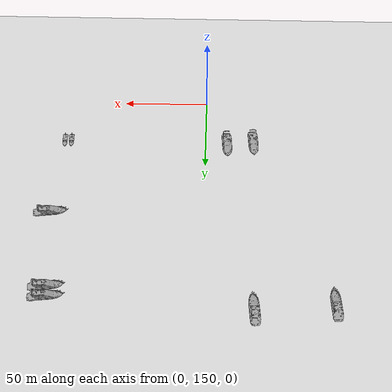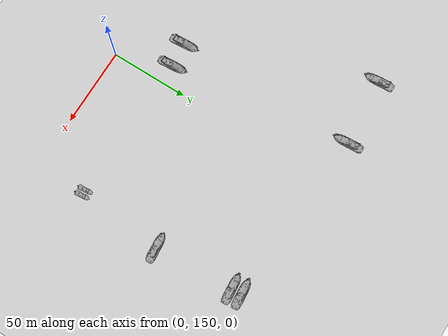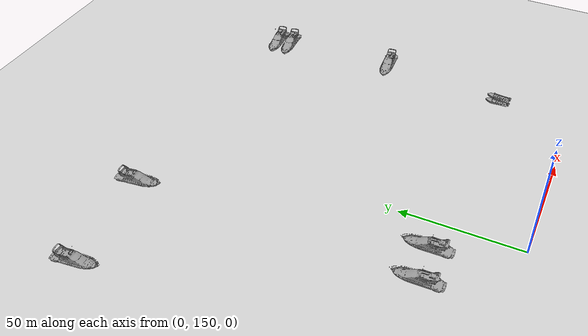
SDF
<sdf version="1.7">
 <world name="default">
  <model name="ground_plane">
   <static>1</static>
   <link name="link">
    <collision name="collision">
     <geometry><plane><normal>0 0 1</normal><size>100 100</size></plane></geometry>
     <surface><friction><ode><mu>100</mu><mu2>50</mu2></ode></friction></surface>
    </collision>
    <visual name="visual">
     <cast_shadows>0</cast_shadows>
     <geometry><plane><normal>0 0 1</normal><size>100 100</size></plane></geometry>
     <material>
      <script><uri>file://media/materials/scripts/gazebo.material</uri><name>Gazebo/Grey</name></script>
     </material>
    </visual>
   </link>
  </model>
  <model name="sailboat_1_clone_1_clone_0">
   <static>1</static>
   <link name="link">
    <visual name="visual">
     <pose>0 0 1 0 0 -1.507</pose>
     <geometry>
      <mesh>
       <uri>/home/albert/marinero_ws/src/marinero_simulations/models/sailboat_1/meshes/Sailboat.stl</uri>
       <scale>1.8 1.8 1.8</scale>
      </mesh>
     </geometry>
     <material>
      <script><uri>file://media/materials/scripts/gazebo.material</uri><name>Gazebo/Grey</name></script>
     </material>
    </visual>
    <collision name="collision">
     <pose>0 0 1 0 0 -1.507</pose>
     <geometry>
      <mesh>
       <uri>/home/albert/marinero_ws/src/marinero_simulations/models/sailboat_1/meshes/Sailboat.stl</uri>
       <scale>1.8 1.8 1.8</scale>
      </mesh>
     </geometry>
    </collision>
   </link>
   <pose>42.3985 307.643 0 0 0 -3.13388</pose>
  </model>
  <model name="sailboat_1_clone_1_clone_1">
   <static>1</static>
   <link name="link">
    <visual name="visual">
     <pose>0 0 1 0 0 -1.507</pose>
     <geometry>
      <mesh>
       <uri>/home/albert/marinero_ws/src/marinero_simulations/models/sailboat_1/meshes/Sailboat.stl</uri>
       <scale>1.8 1.8 1.8</scale>
      </mesh>
     </geometry>
     <material>
      <script><uri>file://media/materials/scripts/gazebo.material</uri><name>Gazebo/Grey</name></script>
     </material>
    </visual>
    <collision name="collision">
     <pose>0 0 1 0 0 -1.507</pose>
     <geometry>
      <mesh>
       <uri>/home/albert/marinero_ws/src/marinero_simulations/models/sailboat_1/meshes/Sailboat.stl</uri>
       <scale>1.8 1.8 1.8</scale>
      </mesh>
     </geometry>
    </collision>
   </link>
   <pose>-9.86745 303.465 0 0 0 -3.13388</pose>
  </model>
  <model name="sailboat_1_clone_1_clone_clone_0_clone">
   <static>1</static>
   <link name="link">
    <visual name="visual">
     <pose>0 0 1 0 0 -1.507</pose>
     <geometry>
      <mesh>
       <uri>/home/albert/marinero_ws/src/marinero_simulations/models/sailboat_1/meshes/Sailboat.stl</uri>
       <scale>1.8 1.8 1.8</scale>
      </mesh>
     </geometry>
     <material>
      <script><uri>file://media/materials/scripts/gazebo.material</uri><name>Gazebo/Grey</name></script>
     </material>
    </visual>
    <collision name="collision">
     <pose>0 0 1 0 0 -1.507</pose>
     <geometry>
      <mesh>
       <uri>/home/albert/marinero_ws/src/marinero_simulations/models/sailboat_1/meshes/Sailboat.stl</uri>
       <scale>1.8 1.8 1.8</scale>
      </mesh>
     </geometry>
    </collision>
   </link>
   <pose>-91.8625 281.936 0 0 -0 3.06385</pose>
  </model>
  <model name="sailboat_1_clone_1_clone_clone_0_clone_0">
   <static>1</static>
   <link name="link">
    <visual name="visual">
     <pose>0 0 1 0 0 -1.507</pose>
     <geometry>
      <mesh>
       <uri>/home/albert/marinero_ws/src/marinero_simulations/models/sailboat_1/meshes/Sailboat.stl</uri>
       <scale>1.8 1.8 1.8</scale>
      </mesh>
     </geometry>
     <material>
      <script><uri>file://media/materials/scripts/gazebo.material</uri><name>Gazebo/Grey</name></script>
     </material>
    </visual>
    <collision name="collision">
     <pose>0 0 1 0 0 -1.507</pose>
     <geometry>
      <mesh>
       <uri>/home/albert/marinero_ws/src/marinero_simulations/models/sailboat_1/meshes/Sailboat.stl</uri>
       <scale>1.8 1.8 1.8</scale>
      </mesh>
     </geometry>
    </collision>
   </link>
   <pose>87.9063 270.83 0 0 -0 1.58681</pose>
  </model>
  <model name="sailboat_1_1_clone_2">
   <static>1</static>
   <link name="link">
    <visual name="visual">
     <pose>0 0 1 0 0 -1.507</pose>
     <geometry>
      <mesh>
       <uri>/home/albert/marinero_ws/src/marinero_simulations/models/sailboat_1/meshes/Sailboat.stl</uri>
       <scale>1.8 1.8 1.8</scale>
      </mesh>
     </geometry>
     <material>
      <script><uri>file://media/materials/scripts/gazebo.material</uri><name>Gazebo/Grey</name></script>
     </material>
    </visual>
    <collision name="collision">
     <pose>0 0 1 0 0 -1.507</pose>
     <geometry>
      <mesh>
       <uri>/home/albert/marinero_ws/src/marinero_simulations/models/sailboat_1/meshes/Sailboat.stl</uri>
       <scale>1.8 1.8 1.8</scale>
      </mesh>
     </geometry>
    </collision>
   </link>
   <pose>3.62081 325.28 0 0 -0 0.002878</pose>
  </model>
  <model name="yacht_1_2">
   <static>1</static>
   <link name="link">
    <visual name="visual">
     <pose>0 0 0.35 0 -0 0</pose>
     <geometry>
      <mesh>
       <uri>/home/albert/marinero_ws/src/marinero_simulations/models/yacht_1/meshes/Yacht_1.stl</uri>
       <scale>2.2 2.2 2.2</scale>
      </mesh>
     </geometry>
     <material>
      <script><uri>file://media/materials/scripts/gazebo.material</uri><name>Gazebo/Grey</name></script>
     </material>
    </visual>
    <collision name="collision">
     <pose>0 0 0.35 0 -0 0</pose>
     <geometry>
      <mesh>
       <uri>/home/albert/marinero_ws/src/marinero_simulations/models/yacht_1/meshes/Yacht_1.stl</uri>
       <scale>2.2 2.2 2.2</scale>
      </mesh>
     </geometry>
    </collision>
   </link>
   <pose>85.1845 287.848 0 0 0 -1.48602</pose>
  </model>
  <model name="yacht_1_2_clone">
   <static>1</static>
   <link name="link">
    <visual name="visual">
     <pose>0 0 0.35 0 -0 0</pose>
     <geometry>
      <mesh>
       <uri>/home/albert/marinero_ws/src/marinero_simulations/models/yacht_1/meshes/Yacht_1.stl</uri>
       <scale>2.2 2.2 2.2</scale>
      </mesh>
     </geometry>
     <material>
      <script><uri>file://media/materials/scripts/gazebo.material</uri><name>Gazebo/Grey</name></script>
     </material>
    </visual>
    <collision name="collision">
     <pose>0 0 0.35 0 -0 0</pose>
     <geometry>
      <mesh>
       <uri>/home/albert/marinero_ws/src/marinero_simulations/models/yacht_1/meshes/Yacht_1.stl</uri>
       <scale>2.2 2.2 2.2</scale>
      </mesh>
     </geometry>
    </collision>
   </link>
   <pose>84.6988 294.401 0 0 0 -1.48602</pose>
  </model>
  <model name="yacht_1_2_clone_0">
   <static>1</static>
   <link name="link">
    <visual name="visual">
     <pose>0 0 0.35 0 -0 0</pose>
     <geometry>
      <mesh>
       <uri>/home/albert/marinero_ws/src/marinero_simulations/models/yacht_1/meshes/Yacht_1.stl</uri>
       <scale>2.2 2.2 2.2</scale>
      </mesh>
     </geometry>
     <material>
      <script><uri>file://media/materials/scripts/gazebo.material</uri><name>Gazebo/Grey</name></script>
     </material>
    </visual>
    <collision name="collision">
     <pose>0 0 0.35 0 -0 0</pose>
     <geometry>
      <mesh>
       <uri>/home/albert/marinero_ws/src/marinero_simulations/models/yacht_1/meshes/Yacht_1.stl</uri>
       <scale>2.2 2.2 2.2</scale>
      </mesh>
     </geometry>
    </collision>
   </link>
   <pose>88.3979 237.109 0 0 0 -1.48602</pose>
  </model>
  <model name="yacht_1_0_clone">
   <static>1</static>
   <link name="link">
    <visual name="visual">
     <pose>0 0 0.35 0 -0 0</pose>
     <geometry>
      <mesh>
       <uri>/home/albert/marinero_ws/src/marinero_simulations/models/yacht_1/meshes/Yacht_1.stl</uri>
       <scale>2.2 2.2 2.2</scale>
      </mesh>
     </geometry>
     <material>
      <script><uri>file://media/materials/scripts/gazebo.material</uri><name>Gazebo/Grey</name></script>
     </material>
    </visual>
    <collision name="collision">
     <pose>0 0 0.35 0 -0 0</pose>
     <geometry>
      <mesh>
       <uri>/home/albert/marinero_ws/src/marinero_simulations/models/yacht_1/meshes/Yacht_1.stl</uri>
       <scale>2.2 2.2 2.2</scale>
      </mesh>
     </geometry>
    </collision>
   </link>
   <pose>-12.584 182.815 0 0 0 -3.08273</pose>
  </model>
  <model name="yacht_1_0_clone_clone">
   <static>1</static>
   <link name="link">
    <visual name="visual">
     <pose>0 0 0.35 0 -0 0</pose>
     <geometry>
      <mesh>
       <uri>/home/albert/marinero_ws/src/marinero_simulations/models/yacht_1/meshes/Yacht_1.stl</uri>
       <scale>2.2 2.2 2.2</scale>
      </mesh>
     </geometry>
     <material>
      <script><uri>file://media/materials/scripts/gazebo.material</uri><name>Gazebo/Grey</name></script>
     </material>
    </visual>
    <collision name="collision">
     <pose>0 0 0.35 0 -0 0</pose>
     <geometry>
      <mesh>
       <uri>/home/albert/marinero_ws/src/marinero_simulations/models/yacht_1/meshes/Yacht_1.stl</uri>
       <scale>2.2 2.2 2.2</scale>
      </mesh>
     </geometry>
    </collision>
   </link>
   <pose>-28.2885 181.35 0 0 0 -3.08273</pose>
  </model>
  <model name="yacht_1_0_clone_clone_1">
   <static>1</static>
   <link name="link">
    <visual name="visual">
     <pose>0 0 0.35 0 -0 0</pose>
     <geometry>
      <mesh>
       <uri>/home/albert/marinero_ws/src/marinero_simulations/models/yacht_1/meshes/Yacht_1.stl</uri>
       <scale>2.2 2.2 2.2</scale>
      </mesh>
     </geometry>
     <material>
      <script><uri>file://media/materials/scripts/gazebo.material</uri><name>Gazebo/Grey</name></script>
     </material>
    </visual>
    <collision name="collision">
     <pose>0 0 0.35 0 -0 0</pose>
     <geometry>
      <mesh>
       <uri>/home/albert/marinero_ws/src/marinero_simulations/models/yacht_1/meshes/Yacht_1.stl</uri>
       <scale>2.2 2.2 2.2</scale>
      </mesh>
     </geometry>
    </collision>
   </link>
   <pose>-27.9061 301.447 0 0 -0 0.07617</pose>
  </model>
  <model name="yacht_1_0_clone_clone_1_clone">
   <static>1</static>
   <link name="link">
    <visual name="visual">
     <pose>0 0 0.35 0 -0 0</pose>
     <geometry>
      <mesh>
       <uri>/home/albert/marinero_ws/src/marinero_simulations/models/yacht_1/meshes/Yacht_1.stl</uri>
       <scale>2.2 2.2 2.2</scale>
      </mesh>
     </geometry>
     <material>
      <script><uri>file://media/materials/scripts/gazebo.material</uri><name>Gazebo/Grey</name></script>
     </material>
    </visual>
    <collision name="collision">
     <pose>0 0 0.35 0 -0 0</pose>
     <geometry>
      <mesh>
       <uri>/home/albert/marinero_ws/src/marinero_simulations/models/yacht_1/meshes/Yacht_1.stl</uri>
       <scale>2.2 2.2 2.2</scale>
      </mesh>
     </geometry>
    </collision>
   </link>
   <pose>-71.3947 297.809 0 0 -0 0.07617</pose>
  </model>
  <model name="speedboat_clone_4_clone_clone_2_clone">
   <static>1</static>
   <link name="link">
    <visual name="visual">
     <pose>0 0 0.2 0 -0 1.57</pose>
     <geometry>
      <mesh>
       <uri>/home/albert/marinero_ws/src/marinero_simulations/models/speedboat/meshes/Speedboat.stl</uri>
       <scale>2 2 2</scale>
      </mesh>
     </geometry>
     <material>
      <script><uri>file://media/materials/scripts/gazebo.material</uri><name>Gazebo/Grey</name></script>
     </material>
    </visual>
    <collision name="collision">
     <pose>0 0 0.2 0 -0 1.57</pose>
     <geometry>
      <mesh>
       <uri>/home/albert/marinero_ws/src/marinero_simulations/models/sailboat_1/meshes/Speedboat.stl</uri>
       <scale>2 2 2</scale>
      </mesh>
     </geometry>
    </collision>
   </link>
   <pose>84.7415 182.83 0 0 -0 0.057421</pose>
  </model>
  <model name="speedboat_clone_4_clone_clone_2_clone_clone">
   <static>1</static>
   <link name="link">
    <visual name="visual">
     <pose>0 0 0.2 0 -0 1.57</pose>
     <geometry>
      <mesh>
       <uri>/home/albert/marinero_ws/src/marinero_simulations/models/speedboat/meshes/Speedboat.stl</uri>
       <scale>2 2 2</scale>
      </mesh>
     </geometry>
     <material>
      <script><uri>file://media/materials/scripts/gazebo.material</uri><name>Gazebo/Grey</name></script>
     </material>
    </visual>
    <collision name="collision">
     <pose>0 0 0.2 0 -0 1.57</pose>
     <geometry>
      <mesh>
       <uri>/home/albert/marinero_ws/src/marinero_simulations/models/sailboat_1/meshes/Speedboat.stl</uri>
       <scale>2 2 2</scale>
      </mesh>
     </geometry>
    </collision>
   </link>
   <pose>80.8775 182.684 0 0 -0 0.057421</pose>
  </model>
 </world>
</sdf>
